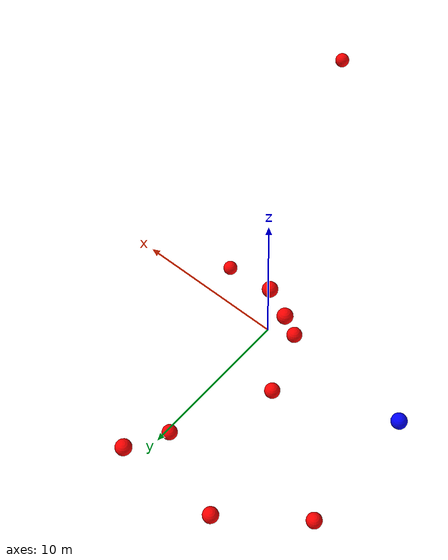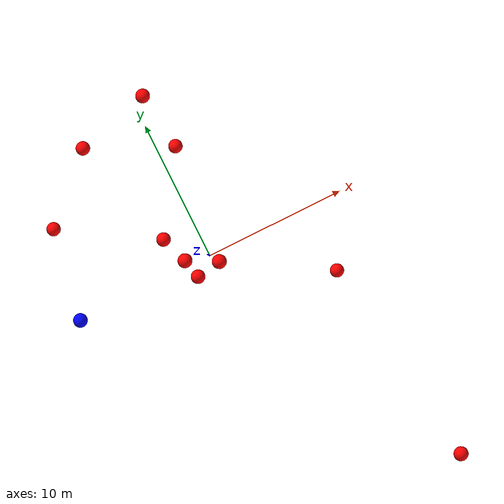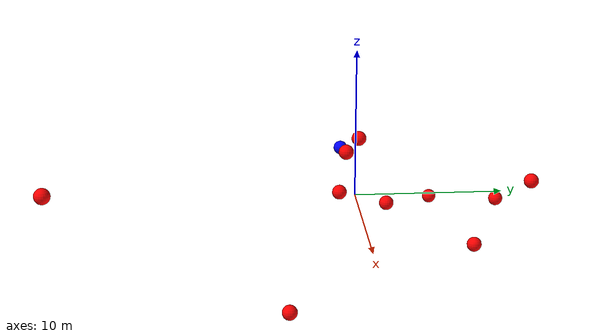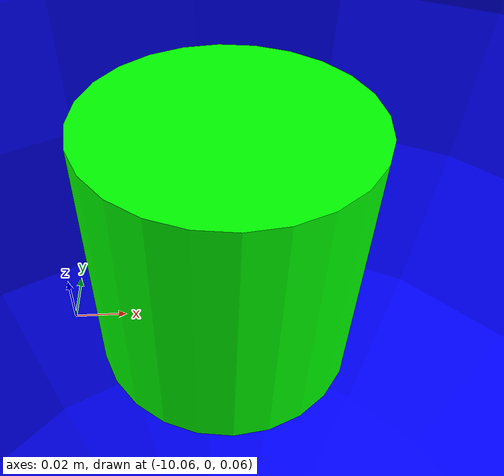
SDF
<?xml version="1.0" ?>
<sdf version="1.8">
    <world name="3d_world">
        <physics name="1ms" type="ode">
            <max_step_size>0.001</max_step_size>
            <real_time_factor>1.0</real_time_factor>
            <real_time_update_rate>1000.0</real_time_update_rate>
        </physics>
        <gravity>0 0 0</gravity>

        <plugin
            filename="gz-sim-physics-system"
            name="gz::sim::v8::systems::Physics">
        </plugin>
        <plugin
            filename="libignition-gazebo-user-commands-system.so"
            name="ignition::gazebo::systems::UserCommands">
        </plugin>
        <plugin
            filename="gz-sim-scene-broadcaster-system"
            name="gz::sim::systems::SceneBroadcaster">
        </plugin>
        <plugin
            filename="gz-sim-sensors-system"
            name="gz::sim::systems::Sensors">
            <render_engine>ogre2</render_engine>
        </plugin>

        <light type="directional" name="sun">
            <cast_shadows>true</cast_shadows>
            <pose>0 0 10 0 0 0</pose>
            <diffuse>0.8 0.8 0.8 1</diffuse>
            <specular>0.2 0.2 0.2 1</specular>
            <attenuation>
                <range>1000</range>
                <constant>0.9</constant>
                <linear>0.01</linear>
                <quadratic>0.001</quadratic>
            </attenuation>
            <direction>-0.5 0.1 -0.9</direction>
        </light>

        <!-- AGENTE -->
        <model name='agente' canonical_link='chassis'>
            <pose relative_to='world'>-10.0 0 0.0 0 0 0</pose>
            <link name='chassis'>
                <pose relative_to='__model__'>0.0 0 0.0 0 0 0</pose>
                <inertial>
                    <mass>1.14395</mass>
                    <inertia>
                        <ixx>0.095329</ixx>
                        <ixy>0</ixy>
                        <ixz>0</ixz>
                        <iyy>0.381317</iyy>
                        <iyz>0</iyz>
                        <izz>0.476646</izz>
                    </inertia>
                </inertial>
                <visual name='visual'>
                    <geometry>
                        <sphere>
                            <radius>0.5</radius>
                        </sphere>
                    </geometry>
                    <material>
                        <ambient>0.0 0.0 1.0 1</ambient>
                        <diffuse>0.0 0.0 1.0 1</diffuse>
                        <specular>0.0 0.0 1.0 1</specular>
                    </material>
                </visual>
                <collision name='collision'>
                    <geometry>
                        <sphere>
                            <radius>0.5</radius>
                        </sphere>
                    </geometry>
                </collision>
                <enable_gravity>false</enable_gravity>
            </link>

            <link name='lidar_link'>
                <pose relative_to='chassis'>0.0 0 0.1 0 0 0</pose>
                <inertial>
                    <mass>0.1</mass>
                    <inertia>
                        <ixx>0.000166667</ixx>
                        <iyy>0.000166667</iyy>
                        <izz>0.000166667</izz>
                    </inertia>
                </inertial>
                <collision name='collision'>
                    <geometry>
                        <cylinder>
                            <radius>0.05</radius>
                            <length>0.1</length>
                        </cylinder>
                    </geometry>
                </collision>
                <visual name='visual'>
                    <geometry>
                        <cylinder>
                            <radius>0.05</radius>
                            <length>0.1</length>
                        </cylinder>
                    </geometry>
                    <material>
                        <ambient>0.0 1.0 0.0 1</ambient>
                        <diffuse>0.0 1.0 0.0 1</diffuse>
                        <specular>0.0 1.0 0.0 1</specular>
                    </material>
                </visual>
                <sensor name="lidar" type="gpu_lidar">
                    <topic>scan</topic>
                    <update_rate>10</update_rate>
                    <lidar>
                        <scan>
                            <horizontal>
                                <samples>5000</samples>
                                <resolution>1</resolution>
                                <min_angle>-3.14159</min_angle>
                                <max_angle>3.14159</max_angle>
                            </horizontal>
                        </scan>
                        <range>
                            <min>0.1</min>
                            <max>10.0</max>
                            <resolution>0.01</resolution>
                        </range>
                    </lidar>
                    <visualize>true</visualize>
                    <always_on>true</always_on>
                    <update_rate>10</update_rate>
                    <pose_frame>lidar</pose_frame>
                </sensor>
                <enable_gravity>false</enable_gravity>
            </link>

            <joint name="lidar_joint" type="fixed">
                <parent>chassis</parent>
                <child>lidar_link</child>
            </joint>

            <plugin
                filename="ignition-gazebo-joint-state-publisher-system"
                name="ignition::gazebo::systems::JointStatePublisher">
            </plugin>
            <plugin
                filename="ignition-gazebo-odometry-publisher-system"
                name="ignition::gazebo::systems::OdometryPublisher">
                <dimensions>3</dimensions>
            </plugin>
            <plugin
                filename="ignition-gazebo-velocity-control-system"
                name="ignition::gazebo::systems::VelocityControl">
                <initial_linear>0.0 0 0</initial_linear>
                <initial_angular>0 0 0.0</initial_angular>
            </plugin>
            <plugin
                filename="libignition-gazebo-pose-publisher-system.so"
                name="ignition::gazebo::systems::PosePublisher">
                <topic>/agente/pose</topic>
                <frame_id>agente</frame_id>
                <update_rate>30</update_rate>
            </plugin>
        </model>

        <!-- OBSTACLE 1 -->
        <model name='obstacle_1' canonical_link='obstacle'>
            <static>false</static>
            <pose relative_to='world'>-4.65 10.76 -2.33 0 0 0</pose>
            <link name='obstacle'>
                <pose relative_to='__model__'>0.0 0 0.0 0 0 0</pose>
                <visual name='visual'>
                    <geometry>
                        <sphere>
                            <radius>0.50</radius>
                        </sphere>
                    </geometry>
                    <material>
                        <ambient>1.0 0.0 0.0 1</ambient>
                        <diffuse>1.0 0.0 0.0 1</diffuse>
                        <specular>1.0 0.0 0.0 1</specular>
                    </material>
                </visual>
                <collision name='collision'>
                    <geometry>
                        <sphere>
                            <radius>0.50</radius>
                        </sphere>
                    </geometry>
                </collision>
                <enable_gravity>false</enable_gravity>
            </link>

            <plugin
                filename="ignition-gazebo-velocity-control-system"
                name="ignition::gazebo::systems::VelocityControl">
                <initial_linear>1.35 -1.44 0.31</initial_linear>
                <initial_angular>0 0 0</initial_angular>
            </plugin>

            <plugin
                filename="ignition-gazebo-odometry-publisher-system"
                name="ignition::gazebo::systems::OdometryPublisher">
                <dimensions>3</dimensions>
            </plugin>
        </model>

        <!-- OBSTACLE 2 -->
        <model name='obstacle_2' canonical_link='obstacle'>
            <static>false</static>
            <pose relative_to='world'>-2.42 2.49 -1.59 0 0 0</pose>
            <link name='obstacle'>
                <pose relative_to='__model__'>0.0 0 0.0 0 0 0</pose>
                <visual name='visual'>
                    <geometry>
                        <sphere>
                            <radius>0.50</radius>
                        </sphere>
                    </geometry>
                    <material>
                        <ambient>1.0 0.0 0.0 1</ambient>
                        <diffuse>1.0 0.0 0.0 1</diffuse>
                        <specular>1.0 0.0 0.0 1</specular>
                    </material>
                </visual>
                <collision name='collision'>
                    <geometry>
                        <sphere>
                            <radius>0.50</radius>
                        </sphere>
                    </geometry>
                </collision>
                <enable_gravity>false</enable_gravity>
            </link>

            <plugin
                filename="ignition-gazebo-velocity-control-system"
                name="ignition::gazebo::systems::VelocityControl">
                <initial_linear>-0.86 -1.10 0.70</initial_linear>
                <initial_angular>0 0 0</initial_angular>
            </plugin>

            <plugin
                filename="ignition-gazebo-odometry-publisher-system"
                name="ignition::gazebo::systems::OdometryPublisher">
                <dimensions>3</dimensions>
            </plugin>
        </model>

        <!-- OBSTACLE 3 -->
        <model name='obstacle_3' canonical_link='obstacle'>
            <static>false</static>
            <pose relative_to='world'>1.22 8.07 -3.36 0 0 0</pose>
            <link name='obstacle'>
                <pose relative_to='__model__'>0.0 0 0.0 0 0 0</pose>
                <visual name='visual'>
                    <geometry>
                        <sphere>
                            <radius>0.50</radius>
                        </sphere>
                    </geometry>
                    <material>
                        <ambient>1.0 0.0 0.0 1</ambient>
                        <diffuse>1.0 0.0 0.0 1</diffuse>
                        <specular>1.0 0.0 0.0 1</specular>
                    </material>
                </visual>
                <collision name='collision'>
                    <geometry>
                        <sphere>
                            <radius>0.50</radius>
                        </sphere>
                    </geometry>
                </collision>
                <enable_gravity>false</enable_gravity>
            </link>

            <plugin
                filename="ignition-gazebo-velocity-control-system"
                name="ignition::gazebo::systems::VelocityControl">
                <initial_linear>0.78 -1.24 0.51</initial_linear>
                <initial_angular>0 0 0</initial_angular>
            </plugin>

            <plugin
                filename="ignition-gazebo-odometry-publisher-system"
                name="ignition::gazebo::systems::OdometryPublisher">
                <dimensions>3</dimensions>
            </plugin>
        </model>

        <!-- OBSTACLE 4 -->
        <model name='obstacle_4' canonical_link='obstacle'>
            <static>false</static>
            <pose relative_to='world'>7.57 -4.90 -4.93 0 0 0</pose>
            <link name='obstacle'>
                <pose relative_to='__model__'>0.0 0 0.0 0 0 0</pose>
                <visual name='visual'>
                    <geometry>
                        <sphere>
                            <radius>0.50</radius>
                        </sphere>
                    </geometry>
                    <material>
                        <ambient>1.0 0.0 0.0 1</ambient>
                        <diffuse>1.0 0.0 0.0 1</diffuse>
                        <specular>1.0 0.0 0.0 1</specular>
                    </material>
                </visual>
                <collision name='collision'>
                    <geometry>
                        <sphere>
                            <radius>0.50</radius>
                        </sphere>
                    </geometry>
                </collision>
                <enable_gravity>false</enable_gravity>
            </link>

            <plugin
                filename="ignition-gazebo-velocity-control-system"
                name="ignition::gazebo::systems::VelocityControl">
                <initial_linear>-0.60 0.87 0.87</initial_linear>
                <initial_angular>0 0 0</initial_angular>
            </plugin>

            <plugin
                filename="ignition-gazebo-odometry-publisher-system"
                name="ignition::gazebo::systems::OdometryPublisher">
                <dimensions>3</dimensions>
            </plugin>
        </model>

        <!-- OBSTACLE 5 -->
        <model name='obstacle_5' canonical_link='obstacle'>
            <static>false</static>
            <pose relative_to='world'>-9.12 6.69 -3.74 0 0 0</pose>
            <link name='obstacle'>
                <pose relative_to='__model__'>0.0 0 0.0 0 0 0</pose>
                <visual name='visual'>
                    <geometry>
                        <sphere>
                            <radius>0.50</radius>
                        </sphere>
                    </geometry>
                    <material>
                        <ambient>1.0 0.0 0.0 1</ambient>
                        <diffuse>1.0 0.0 0.0 1</diffuse>
                        <specular>1.0 0.0 0.0 1</specular>
                    </material>
                </visual>
                <collision name='collision'>
                    <geometry>
                        <sphere>
                            <radius>0.50</radius>
                        </sphere>
                    </geometry>
                </collision>
                <enable_gravity>false</enable_gravity>
            </link>

            <plugin
                filename="ignition-gazebo-velocity-control-system"
                name="ignition::gazebo::systems::VelocityControl">
                <initial_linear>1.79 -0.78 0.43</initial_linear>
                <initial_angular>0 0 0</initial_angular>
            </plugin>

            <plugin
                filename="ignition-gazebo-odometry-publisher-system"
                name="ignition::gazebo::systems::OdometryPublisher">
                <dimensions>3</dimensions>
            </plugin>
        </model>

        <!-- OBSTACLE 6 -->
        <model name='obstacle_6' canonical_link='obstacle'>
            <static>false</static>
            <pose relative_to='world'>-1.39 -0.92 -0.31 0 0 0</pose>
            <link name='obstacle'>
                <pose relative_to='__model__'>0.0 0 0.0 0 0 0</pose>
                <visual name='visual'>
                    <geometry>
                        <sphere>
                            <radius>0.50</radius>
                        </sphere>
                    </geometry>
                    <material>
                        <ambient>1.0 0.0 0.0 1</ambient>
                        <diffuse>1.0 0.0 0.0 1</diffuse>
                        <specular>1.0 0.0 0.0 1</specular>
                    </material>
                </visual>
                <collision name='collision'>
                    <geometry>
                        <sphere>
                            <radius>0.50</radius>
                        </sphere>
                    </geometry>
                </collision>
                <enable_gravity>false</enable_gravity>
            </link>

            <plugin
                filename="ignition-gazebo-velocity-control-system"
                name="ignition::gazebo::systems::VelocityControl">
                <initial_linear>-1.44 0.42 0.14</initial_linear>
                <initial_angular>0 0 0</initial_angular>
            </plugin>

            <plugin
                filename="ignition-gazebo-odometry-publisher-system"
                name="ignition::gazebo::systems::OdometryPublisher">
                <dimensions>3</dimensions>
            </plugin>
        </model>

        <!-- OBSTACLE 7 -->
        <model name='obstacle_7' canonical_link='obstacle'>
            <static>false</static>
            <pose relative_to='world'>0.43 -0.68 3.21 0 0 0</pose>
            <link name='obstacle'>
                <pose relative_to='__model__'>0.0 0 0.0 0 0 0</pose>
                <visual name='visual'>
                    <geometry>
                        <sphere>
                            <radius>0.50</radius>
                        </sphere>
                    </geometry>
                    <material>
                        <ambient>1.0 0.0 0.0 1</ambient>
                        <diffuse>1.0 0.0 0.0 1</diffuse>
                        <specular>1.0 0.0 0.0 1</specular>
                    </material>
                </visual>
                <collision name='collision'>
                    <geometry>
                        <sphere>
                            <radius>0.50</radius>
                        </sphere>
                    </geometry>
                </collision>
                <enable_gravity>false</enable_gravity>
            </link>

            <plugin
                filename="ignition-gazebo-velocity-control-system"
                name="ignition::gazebo::systems::VelocityControl">
                <initial_linear>0.49 0.13 -0.62</initial_linear>
                <initial_angular>0 0 0</initial_angular>
            </plugin>

            <plugin
                filename="ignition-gazebo-odometry-publisher-system"
                name="ignition::gazebo::systems::OdometryPublisher">
                <dimensions>3</dimensions>
            </plugin>
        </model>

        <!-- OBSTACLE 8 -->
        <model name='obstacle_8' canonical_link='obstacle'>
            <static>false</static>
            <pose relative_to='world'>9.21 -19.50 3.93 0 0 0</pose>
            <link name='obstacle'>
                <pose relative_to='__model__'>0.0 0 0.0 0 0 0</pose>
                <visual name='visual'>
                    <geometry>
                        <sphere>
                            <radius>0.50</radius>
                        </sphere>
                    </geometry>
                    <material>
                        <ambient>1.0 0.0 0.0 1</ambient>
                        <diffuse>1.0 0.0 0.0 1</diffuse>
                        <specular>1.0 0.0 0.0 1</specular>
                    </material>
                </visual>
                <collision name='collision'>
                    <geometry>
                        <sphere>
                            <radius>0.50</radius>
                        </sphere>
                    </geometry>
                </collision>
                <enable_gravity>false</enable_gravity>
            </link>

            <plugin
                filename="ignition-gazebo-velocity-control-system"
                name="ignition::gazebo::systems::VelocityControl">
                <initial_linear>-0.59 1.87 -0.38</initial_linear>
                <initial_angular>0 0 0</initial_angular>
            </plugin>

            <plugin
                filename="ignition-gazebo-odometry-publisher-system"
                name="ignition::gazebo::systems::OdometryPublisher">
                <dimensions>3</dimensions>
            </plugin>
        </model>

        <!-- OBSTACLE 9 -->
        <model name='obstacle_9' canonical_link='obstacle'>
            <static>false</static>
            <pose relative_to='world'>0.77 11.86 0.97 0 0 0</pose>
            <link name='obstacle'>
                <pose relative_to='__model__'>0.0 0 0.0 0 0 0</pose>
                <visual name='visual'>
                    <geometry>
                        <sphere>
                            <radius>0.50</radius>
                        </sphere>
                    </geometry>
                    <material>
                        <ambient>1.0 0.0 0.0 1</ambient>
                        <diffuse>1.0 0.0 0.0 1</diffuse>
                        <specular>1.0 0.0 0.0 1</specular>
                    </material>
                </visual>
                <collision name='collision'>
                    <geometry>
                        <sphere>
                            <radius>0.50</radius>
                        </sphere>
                    </geometry>
                </collision>
                <enable_gravity>false</enable_gravity>
            </link>

            <plugin
                filename="ignition-gazebo-velocity-control-system"
                name="ignition::gazebo::systems::VelocityControl">
                <initial_linear>0.73 -1.86 -0.15</initial_linear>
                <initial_angular>0 0 0</initial_angular>
            </plugin>

            <plugin
                filename="ignition-gazebo-odometry-publisher-system"
                name="ignition::gazebo::systems::OdometryPublisher">
                <dimensions>3</dimensions>
            </plugin>
        </model>

        <!-- OBSTACLE 10 -->
        <model name='obstacle_10' canonical_link='obstacle'>
            <static>false</static>
            <pose relative_to='world'>-1.61 0.40 3.47 0 0 0</pose>
            <link name='obstacle'>
                <pose relative_to='__model__'>0.0 0 0.0 0 0 0</pose>
                <visual name='visual'>
                    <geometry>
                        <sphere>
                            <radius>0.50</radius>
                        </sphere>
                    </geometry>
                    <material>
                        <ambient>1.0 0.0 0.0 1</ambient>
                        <diffuse>1.0 0.0 0.0 1</diffuse>
                        <specular>1.0 0.0 0.0 1</specular>
                    </material>
                </visual>
                <collision name='collision'>
                    <geometry>
                        <sphere>
                            <radius>0.50</radius>
                        </sphere>
                    </geometry>
                </collision>
                <enable_gravity>false</enable_gravity>
            </link>

            <plugin
                filename="ignition-gazebo-velocity-control-system"
                name="ignition::gazebo::systems::VelocityControl">
                <initial_linear>0.89 -0.08 -0.66</initial_linear>
                <initial_angular>0 0 0</initial_angular>
            </plugin>

            <plugin
                filename="ignition-gazebo-odometry-publisher-system"
                name="ignition::gazebo::systems::OdometryPublisher">
                <dimensions>3</dimensions>
            </plugin>
        </model>

    </world>
</sdf>
